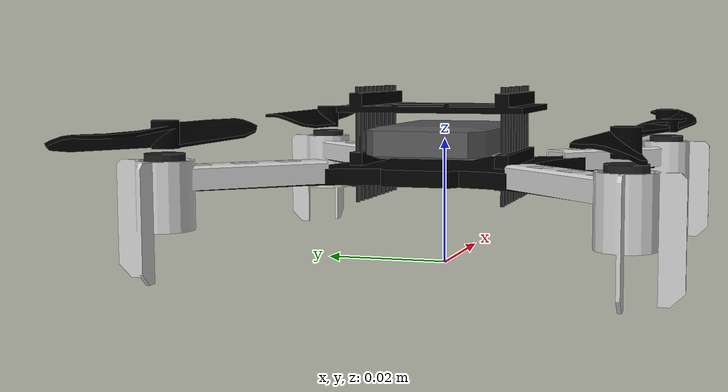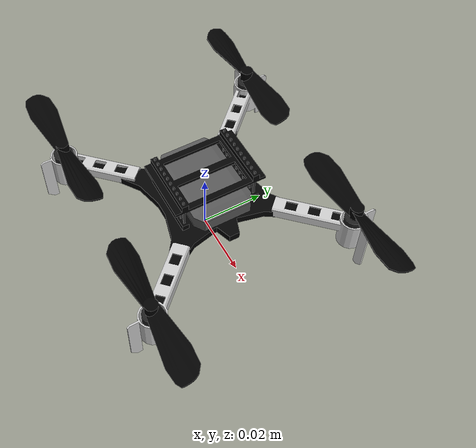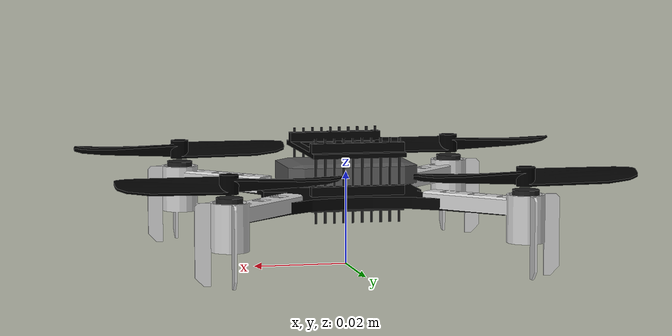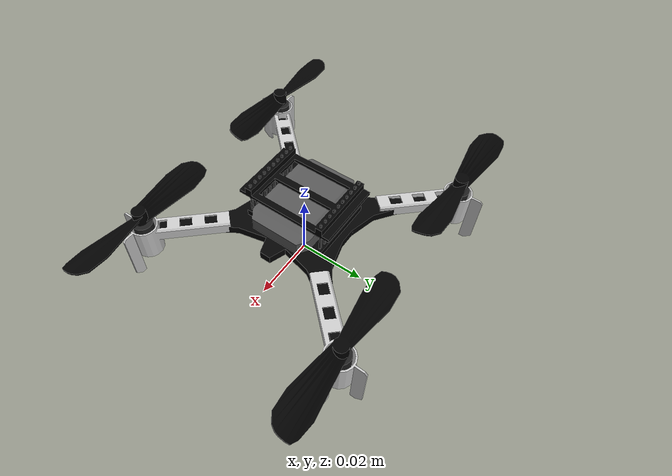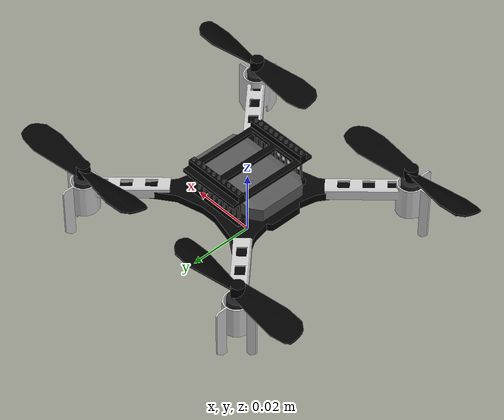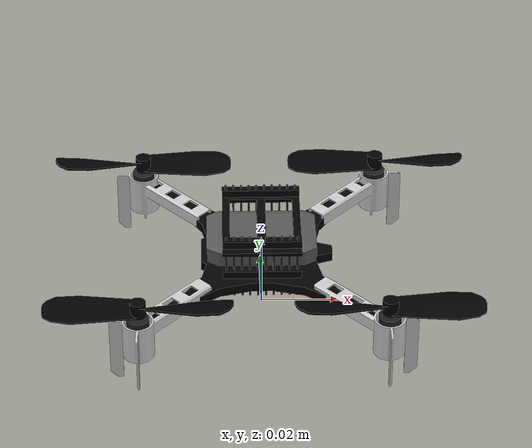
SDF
<sdf version='1.6'>
  <model name='crazyflie'>
    <pose>0 0 0 0 0 0</pose>
    <link name='base_link'>
      <pose frame=''>0 0 0 0 -0 0</pose>
      <inertial>
        <pose frame=''>0 0 0 0 -0 0</pose>
        <mass>1.5</mass>
        <inertia>
          <ixx>0.0347563</ixx>
          <ixy>0</ixy>
          <ixz>0</ixz>
          <iyy>0.07</iyy>
          <iyz>0</iyz>
          <izz>0.0977</izz>
        </inertia>
      </inertial>
      <collision name='base_link_inertia_collision'>
        <pose frame=''>0 0 -0.0 0 -0 0</pose>
        <geometry>
          <box>
            <size>0.065 0.065 0.01</size>
          </box>
        </geometry>
      </collision>
      <visual name='base_link_inertia_visual'>
        <pose frame=''>0 0 -0 0 -0 0</pose>
        <geometry>
          <mesh>
            <scale>1 1.05 1</scale>
            <uri>package://as2_gazebo_assets/models/crazyflie/meshes/cf2_assembly.dae</uri>
          </mesh>
        </geometry>
      </visual>

    </link>
    <link name='m1'>
      <pose frame=''>0.031 -0.0325 0.022 0 0 0</pose>
      <inertial>
        <pose frame=''>0 0 0 0 -0 0</pose>
        <mass>0.005</mass>
        <inertia>
          <ixx>9.75e-07</ixx>
          <ixy>0</ixy>
          <ixz>0</ixz>
          <iyy>4.17041e-05</iyy>
          <iyz>0</iyz>
          <izz>4.26041e-05</izz>
        </inertia>
      </inertial>
      <collision name='m1_collision'>
        <pose frame=''>0 0 0 0 -0 0</pose>
        <geometry>
          <cylinder>
            <length>0.001</length>
            <radius>0.01</radius>
          </cylinder>
        </geometry>
        <surface>
          <contact>
            <ode/>
          </contact>
          <friction>
            <ode/>
          </friction>
        </surface>
      </collision>
      <visual name='m1_visual'>
        <pose frame=''>0 0 0.0 0 -0 0</pose>
        <geometry>
          <mesh>
            <scale>1 1 1</scale>
            <uri>package://as2_gazebo_assets/models/crazyflie/meshes/ccw_prop.dae</uri>
          </mesh>
        </geometry>
      </visual>
      <gravity>1</gravity>
      <velocity_decay/>
    </link>
    <joint name='m1_joint' type='revolute'>
      <child>m1</child>
      <parent>base_link</parent>
      <axis>
        <xyz>0 0 1</xyz>
        <limit>
          <lower>-1e+16</lower>
          <upper>1e+16</upper>
        </limit>
        <dynamics>
          <spring_reference>0</spring_reference>
          <spring_stiffness>0</spring_stiffness>
        </dynamics>
        <use_parent_model_frame>1</use_parent_model_frame>
      </axis>
    </joint>
    <link name='m2'>
      <pose frame=''>-0.031 0.0325 0.022 0 0 0</pose>
      <inertial>
        <pose frame=''>0 0 0 0 -0 0</pose>
        <mass>0.005</mass>
        <inertia>
          <ixx>9.75e-07</ixx>
          <ixy>0</ixy>
          <ixz>0</ixz>
          <iyy>4.17041e-05</iyy>
          <iyz>0</iyz>
          <izz>4.26041e-05</izz>
        </inertia>
      </inertial>
      <collision name='m2_collision'>
        <pose frame=''>0 0 0 0 -0 0</pose>
        <geometry>
          <cylinder>
            <length>0.005</length>
            <radius>0.1</radius>
          </cylinder>
        </geometry>
        <surface>
          <contact>
            <ode/>
          </contact>
          <friction>
            <ode/>
          </friction>
        </surface>
      </collision>
      <visual name='m2_visual'>
        <pose frame=''>0 0 0.0 0 -0 0</pose>
        <geometry>
          <mesh>
            <scale>1 1 1</scale>
            <uri>package://as2_gazebo_assets/models/crazyflie/meshes/ccw_prop.dae</uri>
          </mesh>
        </geometry>
      </visual>
      <gravity>1</gravity>
      <velocity_decay/>
    </link>
    <joint name='m2_joint' type='revolute'>
      <child>m2</child>
      <parent>base_link</parent>
      <axis>
        <xyz>0 0 1</xyz>
        <limit>
          <lower>-1e+16</lower>
          <upper>1e+16</upper>
        </limit>
        <dynamics>
          <spring_reference>0</spring_reference>
          <spring_stiffness>0</spring_stiffness>
        </dynamics>
        <use_parent_model_frame>1</use_parent_model_frame>
      </axis>
    </joint>
    <link name='m3'>
      <pose frame=''>0.031 0.0325 0.022 0 0 0</pose>
      <inertial>
        <pose frame=''>0 0 0 0 -0 0</pose>
        <mass>0.005</mass>
        <inertia>
          <ixx>9.75e-07</ixx>
          <ixy>0</ixy>
          <ixz>0</ixz>
          <iyy>4.17041e-05</iyy>
          <iyz>0</iyz>
          <izz>4.26041e-05</izz>
        </inertia>
      </inertial>
      <collision name='m3_collision'>
        <pose frame=''>0 0 0 0 -0 0</pose>
        <geometry>
          <cylinder>
            <length>0.005</length>
            <radius>0.1</radius>
          </cylinder>
        </geometry>
        <surface>
          <contact>
            <ode/>
          </contact>
          <friction>
            <ode/>
          </friction>
        </surface>
      </collision>
      <visual name='m3_visual'>
        <pose frame=''>0 0 0.0 0 -0 0</pose>
        <geometry>
          <mesh>
            <scale>1 1 1</scale>
            <uri>package://as2_gazebo_assets/models/crazyflie/meshes/cw_prop.dae</uri>
          </mesh>
        </geometry>
      </visual>
      <gravity>1</gravity>
      <velocity_decay/>
    </link>
    <joint name='m3_joint' type='revolute'>
      <child>m3</child>
      <parent>base_link</parent>
      <axis>
        <xyz>0 0 1</xyz>
        <limit>
          <lower>-1e+16</lower>
          <upper>1e+16</upper>
        </limit>
        <dynamics>
          <spring_reference>0</spring_reference>
          <spring_stiffness>0</spring_stiffness>
        </dynamics>
        <use_parent_model_frame>1</use_parent_model_frame>
      </axis>
    </joint>
    <link name='m4'>
      <pose frame=''>-0.031 -0.0325 0.022 0 0 0</pose>
      <inertial>
        <pose frame=''>0 0 0 0 -0 0</pose>
        <mass>0.005</mass>
        <inertia>
          <ixx>9.75e-07</ixx>
          <ixy>0</ixy>
          <ixz>0</ixz>
          <iyy>4.17041e-05</iyy>
          <iyz>0</iyz>
          <izz>4.26041e-05</izz>
        </inertia>
      </inertial>
      <collision name='m4_collision'>
        <pose frame=''>0 0 0 0 -0 0</pose>
        <geometry>
          <cylinder>
            <length>0.005</length>
            <radius>0.1</radius>
          </cylinder>
        </geometry>
        <surface>
          <contact>
            <ode/>
          </contact>
          <friction>
            <ode/>
          </friction>
        </surface>
      </collision>
      <visual name='m4_visual'>
        <pose frame=''>0 0 0.0 0 -0 0</pose>
        <geometry>
          <mesh>
            <scale>1 1 1</scale>
            <uri>package://as2_gazebo_assets/models/crazyflie/meshes/cw_prop.dae</uri>
          </mesh>
        </geometry>
      </visual>
      <gravity>1</gravity>
      <velocity_decay/>
    </link>
    <joint name='m4_joint' type='revolute'>
      <child>m4</child>
      <parent>base_link</parent>
      <axis>
        <xyz>0 0 1</xyz>
        <limit>
          <lower>-1e+16</lower>
          <upper>1e+16</upper>
        </limit>
        <dynamics>
          <spring_reference>0</spring_reference>
          <spring_stiffness>0</spring_stiffness>
        </dynamics>
        <use_parent_model_frame>1</use_parent_model_frame>
      </axis>
    </joint>

  </model>
</sdf>
